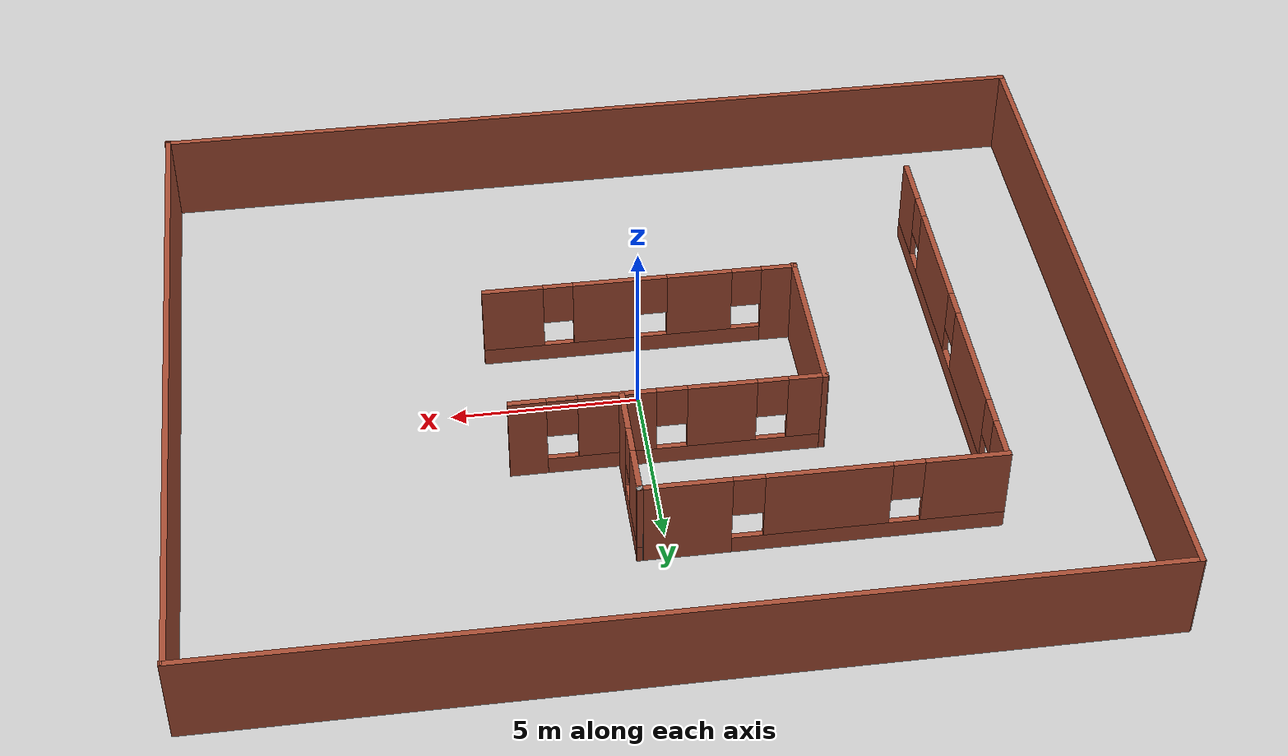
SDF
<sdf version="1.7">
 <world name="default">
  <light name="sun" type="directional">
   <pose>0 0 10 0 -0 0</pose>
   <diffuse>0.8 0.8 0.8 1</diffuse>
   <specular>0.2 0.2 0.2 1</specular>
   <attenuation>
    <range>1000</range>
    <constant>0.9</constant>
    <linear>0.01</linear>
    <quadratic>0.001</quadratic>
   </attenuation>
   <direction>-0.5 0.1 -0.9</direction>
   <spot><inner_angle>0</inner_angle><outer_angle>0</outer_angle><falloff>0</falloff></spot>
  </light>
  <model name="ground_plane">
   <static>1</static>
   <link name="link">
    <collision name="collision">
     <geometry><plane><normal>0 0 1</normal><size>100 100</size></plane></geometry>
     <surface>
      <contact><collide_bitmask>65535</collide_bitmask></contact>
      <friction><ode><mu>100</mu><mu2>50</mu2></ode></friction>
     </surface>
    </collision>
    <visual name="visual">
     <cast_shadows>0</cast_shadows>
     <geometry><plane><normal>0 0 1</normal><size>100 100</size></plane></geometry>
     <material>
      <script><uri>file://media/materials/scripts/gazebo.material</uri><name>Gazebo/Grey</name></script>
     </material>
    </visual>
   </link>
  </model>
  <gravity>0 0 -9.8</gravity>
  <magnetic_field>6e-06 2.3e-05 -4.2e-05</magnetic_field>
  <atmosphere type="adiabatic"/>
  <physics type="ode">
   <max_step_size>0.001</max_step_size>
   <real_time_factor>1</real_time_factor>
   <real_time_update_rate>1000</real_time_update_rate>
  </physics>
  <scene><ambient>0.4 0.4 0.4 1</ambient><background>0.7 0.7 0.7 1</background><shadows>1</shadows></scene>
  <audio><device>default</device></audio>
  <spherical_coordinates>
   <surface_model>EARTH_WGS84</surface_model>
   <world_frame_orientation>ENU</world_frame_orientation>
   <longitude_deg>21.893977363705066</longitude_deg>
   <latitude_deg>43.330890405343304</latitude_deg>
   <elevation>236</elevation>
   <heading_deg>180</heading_deg>
  </spherical_coordinates>
  <model name="walls">
   <pose>-4034.79 1534.82 0 0 -0 0</pose>
   <link name="Wall_1">
    <collision name="Wall_1_Collision">
     <geometry><box><size>3852 0.15 2.5</size></box></geometry>
     <pose>0 0 1.25 0 -0 0</pose>
    </collision>
    <visual name="Wall_1_Visual">
     <pose>0 0 1.25 0 -0 0</pose>
     <geometry><box><size>3852 0.15 2.5</size></box></geometry>
     <material>
      <script><uri>file://media/materials/scripts/gazebo.material</uri><name>Gazebo/Grey</name></script>
      <ambient>1 1 1 1</ambient>
     </material>
     <meta><layer>0</layer></meta>
    </visual>
    <pose>-1879.21 1544.6 0 0 -0 0</pose>
   </link>
   <link name="Wall_11">
    <pose>4034.31 -1532.5 0 0 -0 3.14159</pose>
    <visual name="Wall_11_Visual_0">
     <pose>-3.63038 0 1.25 0 -0 0</pose>
     <geometry><box><size>0.989246 0.15 2.5</size></box></geometry>
     <material>
      <script><uri>file://media/materials/scripts/gazebo.material</uri><name>Gazebo/Bricks</name></script>
      <ambient>1 1 1 1</ambient>
     </material>
     <meta><layer>0</layer></meta>
    </visual>
    <collision name="Wall_11_Collision_0">
     <geometry><box><size>0.989246 0.15 2.5</size></box></geometry>
     <pose>-3.63038 0 1.25 0 -0 0</pose>
    </collision>
    <visual name="Wall_11_Visual_1">
     <pose>0.494623 0 0.25 0 -0 0</pose>
     <geometry><box><size>7.26075 0.15 0.5</size></box></geometry>
     <material>
      <script><uri>file://media/materials/scripts/gazebo.material</uri><name>Gazebo/Bricks</name></script>
      <ambient>1 1 1 1</ambient>
     </material>
     <meta><layer>0</layer></meta>
    </visual>
    <collision name="Wall_11_Collision_1">
     <geometry><box><size>7.26075 0.15 0.5</size></box></geometry>
     <pose>0.494623 0 0.25 0 -0 0</pose>
    </collision>
    <visual name="Wall_11_Visual_2">
     <pose>-1.32796 0 1.5 0 -0 0</pose>
     <geometry><box><size>2.01559 0.15 2</size></box></geometry>
     <material>
      <script><uri>file://media/materials/scripts/gazebo.material</uri><name>Gazebo/Bricks</name></script>
      <ambient>1 1 1 1</ambient>
     </material>
     <meta><layer>0</layer></meta>
    </visual>
    <collision name="Wall_11_Collision_2">
     <geometry><box><size>2.01559 0.15 2</size></box></geometry>
     <pose>-1.32796 0 1.5 0 -0 0</pose>
    </collision>
    <visual name="Wall_11_Visual_3">
     <pose>1.3794 0 1.5 0 -0 0</pose>
     <geometry><box><size>1.79912 0.15 2</size></box></geometry>
     <material>
      <script><uri>file://media/materials/scripts/gazebo.material</uri><name>Gazebo/Bricks</name></script>
      <ambient>1 1 1 1</ambient>
     </material>
     <meta><layer>0</layer></meta>
    </visual>
    <collision name="Wall_11_Collision_3">
     <geometry><box><size>1.79912 0.15 2</size></box></geometry>
     <pose>1.3794 0 1.5 0 -0 0</pose>
    </collision>
    <visual name="Wall_11_Visual_4">
     <pose>3.60198 0 1.5 0 -0 0</pose>
     <geometry><box><size>1.04604 0.15 2</size></box></geometry>
     <material>
      <script><uri>file://media/materials/scripts/gazebo.material</uri><name>Gazebo/Bricks</name></script>
      <ambient>1 1 1 1</ambient>
     </material>
     <meta><layer>0</layer></meta>
    </visual>
    <collision name="Wall_11_Collision_4">
     <geometry><box><size>1.04604 0.15 2</size></box></geometry>
     <pose>3.60198 0 1.5 0 -0 0</pose>
    </collision>
    <visual name="Wall_11_Visual_5">
     <pose>-2.73575 0 1.9 0 -0 0</pose>
     <geometry><box><size>0.8 0.15 1.2</size></box></geometry>
     <material>
      <script><uri>file://media/materials/scripts/gazebo.material</uri><name>Gazebo/Bricks</name></script>
      <ambient>1 1 1 1</ambient>
     </material>
     <meta><layer>0</layer></meta>
    </visual>
    <collision name="Wall_11_Collision_5">
     <geometry><box><size>0.8 0.15 1.2</size></box></geometry>
     <pose>-2.73575 0 1.9 0 -0 0</pose>
    </collision>
    <visual name="Wall_11_Visual_6">
     <pose>0.079838 0 1.9 0 -0 0</pose>
     <geometry><box><size>0.8 0.15 1.2</size></box></geometry>
     <material>
      <script><uri>file://media/materials/scripts/gazebo.material</uri><name>Gazebo/Bricks</name></script>
      <ambient>1 1 1 1</ambient>
     </material>
     <meta><layer>0</layer></meta>
    </visual>
    <collision name="Wall_11_Collision_6">
     <geometry><box><size>0.8 0.15 1.2</size></box></geometry>
     <pose>0.079838 0 1.9 0 -0 0</pose>
    </collision>
    <visual name="Wall_11_Visual_7">
     <pose>2.67896 0 1.9 0 -0 0</pose>
     <geometry><box><size>0.8 0.15 1.2</size></box></geometry>
     <material>
      <script><uri>file://media/materials/scripts/gazebo.material</uri><name>Gazebo/Bricks</name></script>
      <ambient>1 1 1 1</ambient>
     </material>
     <meta><layer>0</layer></meta>
    </visual>
    <collision name="Wall_11_Collision_7">
     <geometry><box><size>0.8 0.15 1.2</size></box></geometry>
     <pose>2.67896 0 1.9 0 -0 0</pose>
    </collision>
   </link>
   <link name="Wall_12">
    <collision name="Wall_12_Collision">
     <geometry><box><size>4.58322 0.15 2.5</size></box></geometry>
     <pose>0 0 1.25 0 -0 0</pose>
    </collision>
    <visual name="Wall_12_Visual">
     <pose>0 0 1.25 0 -0 0</pose>
     <geometry><box><size>4.58322 0.15 2.5</size></box></geometry>
     <material>
      <script><uri>file://media/materials/scripts/gazebo.material</uri><name>Gazebo/Bricks</name></script>
      <ambient>1 1 1 1</ambient>
     </material>
     <meta><layer>0</layer></meta>
    </visual>
    <pose>4030.28 -1534.71 0 0 -0 -1.5708</pose>
   </link>
   <link name="Wall_13">
    <pose>4034.45 -1536.89 0 0 -0 0</pose>
    <visual name="Wall_13_Visual_0">
     <pose>-3.76201 0 1.25 0 -0 0</pose>
     <geometry><box><size>0.975983 0.15 2.5</size></box></geometry>
     <material>
      <script><uri>file://media/materials/scripts/gazebo.material</uri><name>Gazebo/Bricks</name></script>
      <ambient>1 1 1 1</ambient>
     </material>
     <meta><layer>0</layer></meta>
    </visual>
    <collision name="Wall_13_Collision_0">
     <geometry><box><size>0.975983 0.15 2.5</size></box></geometry>
     <pose>-3.76201 0 1.25 0 -0 0</pose>
    </collision>
    <visual name="Wall_13_Visual_1">
     <pose>0.487991 0 0.25 0 -0 0</pose>
     <geometry><box><size>7.52402 0.15 0.5</size></box></geometry>
     <material>
      <script><uri>file://media/materials/scripts/gazebo.material</uri><name>Gazebo/Bricks</name></script>
      <ambient>1 1 1 1</ambient>
     </material>
     <meta><layer>0</layer></meta>
    </visual>
    <collision name="Wall_13_Collision_1">
     <geometry><box><size>7.52402 0.15 0.5</size></box></geometry>
     <pose>0.487991 0 0.25 0 -0 0</pose>
    </collision>
    <visual name="Wall_13_Visual_2">
     <pose>-1.59763 0 1.5 0 -0 0</pose>
     <geometry><box><size>1.75278 0.15 2</size></box></geometry>
     <material>
      <script><uri>file://media/materials/scripts/gazebo.material</uri><name>Gazebo/Bricks</name></script>
      <ambient>1 1 1 1</ambient>
     </material>
     <meta><layer>0</layer></meta>
    </visual>
    <collision name="Wall_13_Collision_2">
     <geometry><box><size>1.75278 0.15 2</size></box></geometry>
     <pose>-1.59763 0 1.5 0 -0 0</pose>
    </collision>
    <visual name="Wall_13_Visual_3">
     <pose>0.947018 0 1.5 0 -0 0</pose>
     <geometry><box><size>1.73652 0.15 2</size></box></geometry>
     <material>
      <script><uri>file://media/materials/scripts/gazebo.material</uri><name>Gazebo/Bricks</name></script>
      <ambient>1 1 1 1</ambient>
     </material>
     <meta><layer>0</layer></meta>
    </visual>
    <collision name="Wall_13_Collision_3">
     <geometry><box><size>1.73652 0.15 2</size></box></geometry>
     <pose>0.947018 0 1.5 0 -0 0</pose>
    </collision>
    <visual name="Wall_13_Visual_4">
     <pose>3.43264 0 1.5 0 -0 0</pose>
     <geometry><box><size>1.63472 0.15 2</size></box></geometry>
     <material>
      <script><uri>file://media/materials/scripts/gazebo.material</uri><name>Gazebo/Bricks</name></script>
      <ambient>1 1 1 1</ambient>
     </material>
     <meta><layer>0</layer></meta>
    </visual>
    <collision name="Wall_13_Collision_4">
     <geometry><box><size>1.63472 0.15 2</size></box></geometry>
     <pose>3.43264 0 1.5 0 -0 0</pose>
    </collision>
    <visual name="Wall_13_Visual_5">
     <pose>-2.87402 0 1.9 0 -0 0</pose>
     <geometry><box><size>0.8 0.15 1.2</size></box></geometry>
     <material>
      <script><uri>file://media/materials/scripts/gazebo.material</uri><name>Gazebo/Bricks</name></script>
      <ambient>1 1 1 1</ambient>
     </material>
     <meta><layer>0</layer></meta>
    </visual>
    <collision name="Wall_13_Collision_5">
     <geometry><box><size>0.8 0.15 1.2</size></box></geometry>
     <pose>-2.87402 0 1.9 0 -0 0</pose>
    </collision>
    <visual name="Wall_13_Visual_6">
     <pose>-0.32124 0 1.9 0 -0 0</pose>
     <geometry><box><size>0.8 0.15 1.2</size></box></geometry>
     <material>
      <script><uri>file://media/materials/scripts/gazebo.material</uri><name>Gazebo/Bricks</name></script>
      <ambient>1 1 1 1</ambient>
     </material>
     <meta><layer>0</layer></meta>
    </visual>
    <collision name="Wall_13_Collision_6">
     <geometry><box><size>0.8 0.15 1.2</size></box></geometry>
     <pose>-0.32124 0 1.9 0 -0 0</pose>
    </collision>
    <visual name="Wall_13_Visual_7">
     <pose>2.21528 0 1.9 0 -0 0</pose>
     <geometry><box><size>0.8 0.15 1.2</size></box></geometry>
     <material>
      <script><uri>file://media/materials/scripts/gazebo.material</uri><name>Gazebo/Bricks</name></script>
      <ambient>1 1 1 1</ambient>
     </material>
     <meta><layer>0</layer></meta>
    </visual>
    <collision name="Wall_13_Collision_7">
     <geometry><box><size>0.8 0.15 1.2</size></box></geometry>
     <pose>2.21528 0 1.9 0 -0 0</pose>
    </collision>
   </link>
   <link name="Wall_15">
    <pose>4035.52 -1530.76 0 0 -0 1.5708</pose>
    <visual name="Wall_15_Visual_0">
     <pose>-1.10032 0 1.25 0 -0 0</pose>
     <geometry><box><size>1.29936 0.15 2.5</size></box></geometry>
     <material>
      <script><uri>file://media/materials/scripts/gazebo.material</uri><name>Gazebo/Bricks</name></script>
      <ambient>1 1 1 1</ambient>
     </material>
     <meta><layer>0</layer></meta>
    </visual>
    <collision name="Wall_15_Collision_0">
     <geometry><box><size>1.29936 0.15 2.5</size></box></geometry>
     <pose>-1.10032 0 1.25 0 -0 0</pose>
    </collision>
    <visual name="Wall_15_Visual_1">
     <pose>0.649678 0 0.25 0 -0 0</pose>
     <geometry><box><size>2.20064 0.15 0.5</size></box></geometry>
     <material>
      <script><uri>file://media/materials/scripts/gazebo.material</uri><name>Gazebo/Bricks</name></script>
      <ambient>1 1 1 1</ambient>
     </material>
     <meta><layer>0</layer></meta>
    </visual>
    <collision name="Wall_15_Collision_1">
     <geometry><box><size>2.20064 0.15 0.5</size></box></geometry>
     <pose>0.649678 0 0.25 0 -0 0</pose>
    </collision>
    <visual name="Wall_15_Visual_2">
     <pose>1.04968 0 1.5 0 -0 0</pose>
     <geometry><box><size>1.40064 0.15 2</size></box></geometry>
     <material>
      <script><uri>file://media/materials/scripts/gazebo.material</uri><name>Gazebo/Bricks</name></script>
      <ambient>1 1 1 1</ambient>
     </material>
     <meta><layer>0</layer></meta>
    </visual>
    <collision name="Wall_15_Collision_2">
     <geometry><box><size>1.40064 0.15 2</size></box></geometry>
     <pose>1.04968 0 1.5 0 -0 0</pose>
    </collision>
    <visual name="Wall_15_Visual_3">
     <pose>-0.050644 0 1.9 0 -0 0</pose>
     <geometry><box><size>0.8 0.15 1.2</size></box></geometry>
     <material>
      <script><uri>file://media/materials/scripts/gazebo.material</uri><name>Gazebo/Bricks</name></script>
      <ambient>1 1 1 1</ambient>
     </material>
     <meta><layer>0</layer></meta>
    </visual>
    <collision name="Wall_15_Collision_3">
     <geometry><box><size>0.8 0.15 1.2</size></box></geometry>
     <pose>-0.050644 0 1.9 0 -0 0</pose>
    </collision>
   </link>
   <link name="Wall_16">
    <collision name="Wall_16_Collision">
     <geometry><box><size>0.16 0.15 2.5</size></box></geometry>
     <pose>0 0 1.25 0 -0 0</pose>
    </collision>
    <visual name="Wall_16_Visual">
     <pose>0 0 1.25 0 -0 0</pose>
     <geometry><box><size>0.16 0.15 2.5</size></box></geometry>
     <material>
      <script><uri>file://media/materials/scripts/gazebo.material</uri><name>Gazebo/Grey</name></script>
      <ambient>1 1 1 1</ambient>
     </material>
     <meta><layer>0</layer></meta>
    </visual>
    <pose>4035.52 -1529.09 0 0 -0 0</pose>
   </link>
   <link name="Wall_17">
    <pose>4030.93 -1529.09 0 0 -0 3.14159</pose>
    <visual name="Wall_17_Visual_0">
     <pose>-3.48106 0 1.25 0 -0 0</pose>
     <geometry><box><size>2.38819 0.15 2.5</size></box></geometry>
     <material>
      <script><uri>file://media/materials/scripts/gazebo.material</uri><name>Gazebo/Bricks</name></script>
      <ambient>1 1 1 1</ambient>
     </material>
     <meta><layer>0</layer></meta>
    </visual>
    <collision name="Wall_17_Collision_0">
     <geometry><box><size>2.38819 0.15 2.5</size></box></geometry>
     <pose>-3.48106 0 1.25 0 -0 0</pose>
    </collision>
    <visual name="Wall_17_Visual_1">
     <pose>1.19409 0 0.25 0 -0 0</pose>
     <geometry><box><size>6.96212 0.15 0.5</size></box></geometry>
     <material>
      <script><uri>file://media/materials/scripts/gazebo.material</uri><name>Gazebo/Bricks</name></script>
      <ambient>1 1 1 1</ambient>
     </material>
     <meta><layer>0</layer></meta>
    </visual>
    <collision name="Wall_17_Collision_1">
     <geometry><box><size>6.96212 0.15 0.5</size></box></geometry>
     <pose>1.19409 0 0.25 0 -0 0</pose>
    </collision>
    <visual name="Wall_17_Visual_2">
     <pose>0.107987 0 1.5 0 -0 0</pose>
     <geometry><box><size>3.1899 0.15 2</size></box></geometry>
     <material>
      <script><uri>file://media/materials/scripts/gazebo.material</uri><name>Gazebo/Bricks</name></script>
      <ambient>1 1 1 1</ambient>
     </material>
     <meta><layer>0</layer></meta>
    </visual>
    <collision name="Wall_17_Collision_2">
     <geometry><box><size>3.1899 0.15 2</size></box></geometry>
     <pose>0.107987 0 1.5 0 -0 0</pose>
    </collision>
    <visual name="Wall_17_Visual_3">
     <pose>3.58905 0 1.5 0 -0 0</pose>
     <geometry><box><size>2.17222 0.15 2</size></box></geometry>
     <material>
      <script><uri>file://media/materials/scripts/gazebo.material</uri><name>Gazebo/Bricks</name></script>
      <ambient>1 1 1 1</ambient>
     </material>
     <meta><layer>0</layer></meta>
    </visual>
    <collision name="Wall_17_Collision_3">
     <geometry><box><size>2.17222 0.15 2</size></box></geometry>
     <pose>3.58905 0 1.5 0 -0 0</pose>
    </collision>
    <visual name="Wall_17_Visual_4">
     <pose>-1.88696 0 1.9 0 -0 0</pose>
     <geometry><box><size>0.8 0.15 1.2</size></box></geometry>
     <material>
      <script><uri>file://media/materials/scripts/gazebo.material</uri><name>Gazebo/Bricks</name></script>
      <ambient>1 1 1 1</ambient>
     </material>
     <meta><layer>0</layer></meta>
    </visual>
    <collision name="Wall_17_Collision_4">
     <geometry><box><size>0.8 0.15 1.2</size></box></geometry>
     <pose>-1.88696 0 1.9 0 -0 0</pose>
    </collision>
    <visual name="Wall_17_Visual_5">
     <pose>2.10294 0 1.9 0 -0 0</pose>
     <geometry><box><size>0.8 0.15 1.2</size></box></geometry>
     <material>
      <script><uri>file://media/materials/scripts/gazebo.material</uri><name>Gazebo/Bricks</name></script>
      <ambient>1 1 1 1</ambient>
     </material>
     <meta><layer>0</layer></meta>
    </visual>
    <collision name="Wall_17_Collision_5">
     <geometry><box><size>0.8 0.15 1.2</size></box></geometry>
     <pose>2.10294 0 1.9 0 -0 0</pose>
    </collision>
   </link>
   <link name="Wall_18">
    <pose>4026.36 -1534.89 0 0 -0 -1.5708</pose>
    <visual name="Wall_18_Visual_0">
     <pose>-5.26023 0 1.25 0 -0 0</pose>
     <geometry><box><size>1.22954 0.15 2.5</size></box></geometry>
     <material>
      <script><uri>file://media/materials/scripts/gazebo.material</uri><name>Gazebo/Bricks</name></script>
      <ambient>1 1 1 1</ambient>
     </material>
     <meta><layer>0</layer></meta>
    </visual>
    <collision name="Wall_18_Collision_0">
     <geometry><box><size>1.22954 0.15 2.5</size></box></geometry>
     <pose>-5.26023 0 1.25 0 -0 0</pose>
    </collision>
    <visual name="Wall_18_Visual_1">
     <pose>0.614769 0 0.25 0 -0 0</pose>
     <geometry><box><size>10.5205 0.15 0.5</size></box></geometry>
     <material>
      <script><uri>file://media/materials/scripts/gazebo.material</uri><name>Gazebo/Bricks</name></script>
      <ambient>1 1 1 1</ambient>
     </material>
     <meta><layer>0</layer></meta>
    </visual>
    <collision name="Wall_18_Collision_1">
     <geometry><box><size>10.5205 0.15 0.5</size></box></geometry>
     <pose>0.614769 0 0.25 0 -0 0</pose>
    </collision>
    <visual name="Wall_18_Visual_2">
     <pose>-2.16875 0 1.5 0 -0 0</pose>
     <geometry><box><size>3.35342 0.15 2</size></box></geometry>
     <material>
      <script><uri>file://media/materials/scripts/gazebo.material</uri><name>Gazebo/Bricks</name></script>
      <ambient>1 1 1 1</ambient>
     </material>
     <meta><layer>0</layer></meta>
    </visual>
    <collision name="Wall_18_Collision_2">
     <geometry><box><size>3.35342 0.15 2</size></box></geometry>
     <pose>-2.16875 0 1.5 0 -0 0</pose>
    </collision>
    <visual name="Wall_18_Visual_3">
     <pose>1.95197 0 1.5 0 -0 0</pose>
     <geometry><box><size>3.28801 0.15 2</size></box></geometry>
     <material>
      <script><uri>file://media/materials/scripts/gazebo.material</uri><name>Gazebo/Bricks</name></script>
      <ambient>1 1 1 1</ambient>
     </material>
     <meta><layer>0</layer></meta>
    </visual>
    <collision name="Wall_18_Collision_3">
     <geometry><box><size>3.28801 0.15 2</size></box></geometry>
     <pose>1.95197 0 1.5 0 -0 0</pose>
    </collision>
    <visual name="Wall_18_Visual_4">
     <pose>5.13549 0 1.5 0 -0 0</pose>
     <geometry><box><size>1.47903 0.15 2</size></box></geometry>
     <material>
      <script><uri>file://media/materials/scripts/gazebo.material</uri><name>Gazebo/Bricks</name></script>
      <ambient>1 1 1 1</ambient>
     </material>
     <meta><layer>0</layer></meta>
    </visual>
    <collision name="Wall_18_Collision_4">
     <geometry><box><size>1.47903 0.15 2</size></box></geometry>
     <pose>5.13549 0 1.5 0 -0 0</pose>
    </collision>
    <visual name="Wall_18_Visual_5">
     <pose>-4.24546 0 1.9 0 -0 0</pose>
     <geometry><box><size>0.8 0.15 1.2</size></box></geometry>
     <material>
      <script><uri>file://media/materials/scripts/gazebo.material</uri><name>Gazebo/Bricks</name></script>
      <ambient>1 1 1 1</ambient>
     </material>
     <meta><layer>0</layer></meta>
    </visual>
    <collision name="Wall_18_Collision_5">
     <geometry><box><size>0.8 0.15 1.2</size></box></geometry>
     <pose>-4.24546 0 1.9 0 -0 0</pose>
    </collision>
    <visual name="Wall_18_Visual_6">
     <pose>-0.09204 0 1.9 0 -0 0</pose>
     <geometry><box><size>0.8 0.15 1.2</size></box></geometry>
     <material>
      <script><uri>file://media/materials/scripts/gazebo.material</uri><name>Gazebo/Bricks</name></script>
      <ambient>1 1 1 1</ambient>
     </material>
     <meta><layer>0</layer></meta>
    </visual>
    <collision name="Wall_18_Collision_6">
     <geometry><box><size>0.8 0.15 1.2</size></box></geometry>
     <pose>-0.09204 0 1.9 0 -0 0</pose>
    </collision>
    <visual name="Wall_18_Visual_7">
     <pose>3.99597 0 1.9 0 -0 0</pose>
     <geometry><box><size>0.8 0.15 1.2</size></box></geometry>
     <material>
      <script><uri>file://media/materials/scripts/gazebo.material</uri><name>Gazebo/Bricks</name></script>
      <ambient>1 1 1 1</ambient>
     </material>
     <meta><layer>0</layer></meta>
    </visual>
    <collision name="Wall_18_Collision_7">
     <geometry><box><size>0.8 0.15 1.2</size></box></geometry>
     <pose>3.99597 0 1.9 0 -0 0</pose>
    </collision>
   </link>
   <link name="Wall_2">
    <collision name="Wall_2_Collision">
     <geometry><box><size>4238.25 0.15 2.5</size></box></geometry>
     <pose>0 0 1.25 0 -0 0</pose>
    </collision>
    <visual name="Wall_2_Visual">
     <pose>0 0 1.25 0 -0 0</pose>
     <geometry><box><size>4238.25 0.15 2.5</size></box></geometry>
     <material>
      <script><uri>file://media/materials/scripts/gazebo.material</uri><name>Gazebo/Grey</name></script>
      <ambient>1 1 1 1</ambient>
     </material>
     <meta><layer>0</layer></meta>
    </visual>
    <pose>-2000.13 996.152 0 0 -0 -2.87979</pose>
   </link>
   <link name="Wall_4">
    <collision name="Wall_4_Collision">
     <geometry><box><size>24.452 0.15 2.5</size></box></geometry>
     <pose>0 0 1.25 0 -0 0</pose>
    </collision>
    <visual name="Wall_4_Visual">
     <pose>0 0 1.25 0 -0 0</pose>
     <geometry><box><size>24.452 0.15 2.5</size></box></geometry>
     <material>
      <script><uri>file://media/materials/scripts/gazebo.material</uri><name>Gazebo/Bricks</name></script>
      <ambient>1 1 1 1</ambient>
     </material>
     <meta><layer>0</layer></meta>
    </visual>
    <pose>4034.85 -1524.99 0 0 -0 -0.00022</pose>
   </link>
   <link name="Wall_5">
    <collision name="Wall_5_Collision">
     <geometry><box><size>19.7743 0.15 2.5</size></box></geometry>
     <pose>0 0 1.25 0 -0 0</pose>
    </collision>
    <visual name="Wall_5_Visual">
     <pose>0 0 1.25 0 -0 0</pose>
     <geometry><box><size>19.7743 0.15 2.5</size></box></geometry>
     <material>
      <script><uri>file://media/materials/scripts/gazebo.material</uri><name>Gazebo/Bricks</name></script>
      <ambient>1 1 1 1</ambient>
     </material>
     <meta><layer>0</layer></meta>
    </visual>
    <pose>4046.97 -1534.81 0 0 -0 -1.5709</pose>
   </link>
   <link name="Wall_6">
    <collision name="Wall_6_Collision">
     <geometry><box><size>24.452 0.15 2.5</size></box></geometry>
     <pose>0 0 1.25 0 -0 0</pose>
    </collision>
    <visual name="Wall_6_Visual">
     <pose>0 0 1.25 0 -0 0</pose>
     <geometry><box><size>24.452 0.15 2.5</size></box></geometry>
     <material>
      <script><uri>file://media/materials/scripts/gazebo.material</uri><name>Gazebo/Bricks</name></script>
      <ambient>1 1 1 1</ambient>
     </material>
     <meta><layer>0</layer></meta>
    </visual>
    <pose>4034.84 -1544.6 0 0 -0 3.14137</pose>
   </link>
   <link name="Wall_7">
    <collision name="Wall_7_Collision">
     <geometry><box><size>19.7743 0.15 2.5</size></box></geometry>
     <pose>0 0 1.25 0 -0 0</pose>
    </collision>
    <visual name="Wall_7_Visual">
     <pose>0 0 1.25 0 -0 0</pose>
     <geometry><box><size>19.7743 0.15 2.5</size></box></geometry>
     <material>
      <script><uri>file://media/materials/scripts/gazebo.material</uri><name>Gazebo/Bricks</name></script>
      <ambient>1 1 1 1</ambient>
     </material>
     <meta><layer>0</layer></meta>
    </visual>
    <pose>4022.67 -1534.8 0 0 -0 1.5707</pose>
   </link>
   <static>1</static>
  </model>
 </world>
</sdf>
